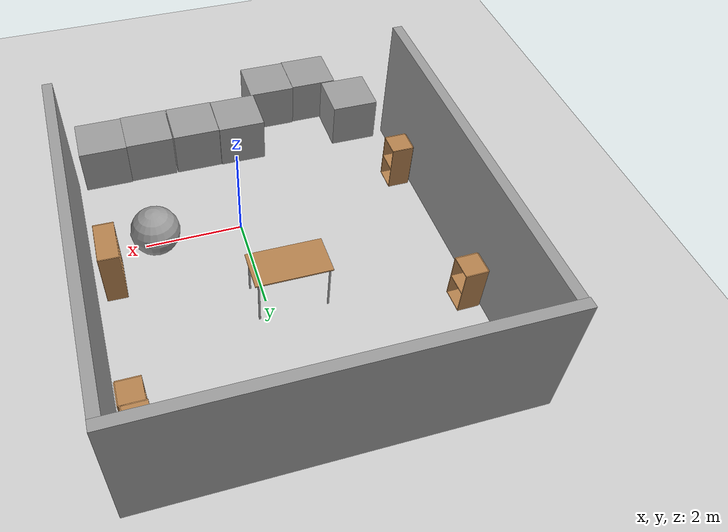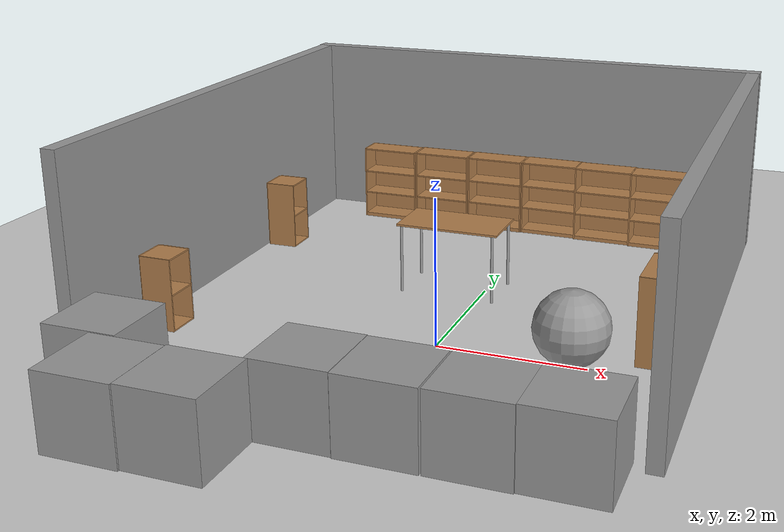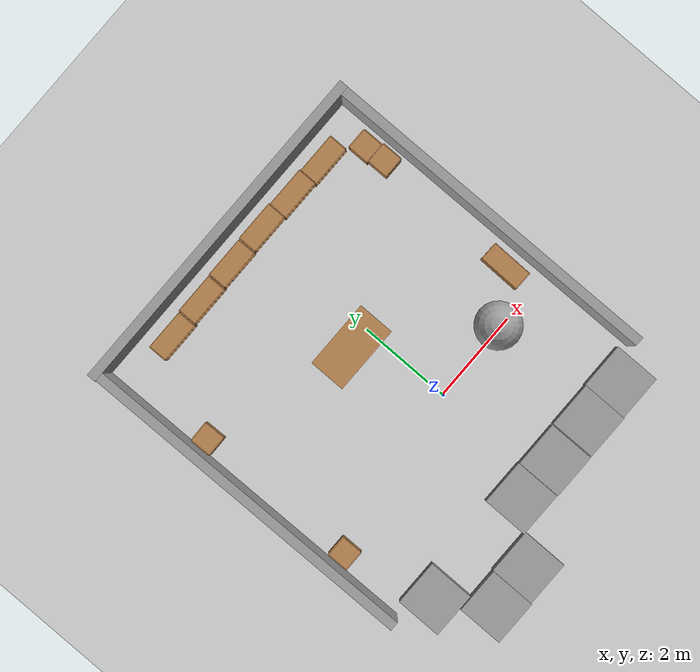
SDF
<sdf version="1.4">
 <world name="default">
  <light name="sun" type="directional">
   <pose>0 0 10 0 -0 0</pose>
   <diffuse>0.8 0.8 0.8 1</diffuse>
   <specular>0.2 0.2 0.2 1</specular>
   <attenuation>
    <range>1000</range>
    <constant>0.9</constant>
    <linear>0.01</linear>
    <quadratic>0.001</quadratic>
   </attenuation>
   <direction>-0.5 0.1 -0.9</direction>
  </light>
  <model name="ground_plane">
   <static>1</static>
   <link name="link">
    <collision name="collision">
     <geometry><plane><normal>0 0 1</normal><size>100 100</size></plane></geometry>
     <surface><friction><ode><mu>100</mu><mu2>50</mu2></ode></friction></surface>
    </collision>
    <visual name="visual">
     <cast_shadows>0</cast_shadows>
     <geometry><plane><normal>0 0 1</normal><size>100 100</size></plane></geometry>
     <material>
      <script><uri>file://media/materials/scripts/gazebo.material</uri><name>Gazebo/Grey</name></script>
     </material>
    </visual>
    <velocity_decay><linear>0</linear><angular>0</angular></velocity_decay>
   </link>
  </model>
  <physics type="ode">
   <max_step_size>0.001</max_step_size>
   <real_time_factor>1</real_time_factor>
   <real_time_update_rate>1000</real_time_update_rate>
   <gravity>0 0 -9.8</gravity>
  </physics>
  <scene><ambient>0.4 0.4 0.4 1</ambient><background>0.7 0.7 0.7 1</background><shadows>1</shadows></scene>
  <spherical_coordinates>
   <surface_model>EARTH_WGS84</surface_model>
   <latitude_deg>0</latitude_deg>
   <longitude_deg>0</longitude_deg>
   <elevation>0</elevation>
   <heading_deg>0</heading_deg>
  </spherical_coordinates>
  <model name="bookshelf_1">
   <static>1</static>
   <link name="link">
    <inertial><mass>1</mass></inertial>
    <collision name="back">
     <pose>0 0.005 0.6 0 -0 0</pose>
     <geometry><box><size>0.9 0.01 1.2</size></box></geometry>
    </collision>
    <visual name="visual1">
     <pose>0 0.005 0.6 0 -0 0</pose>
     <geometry><box><size>0.9 0.01 1.2</size></box></geometry>
     <material>
      <script><uri>file://media/materials/scripts/gazebo.material</uri><name>Gazebo/Wood</name></script>
     </material>
    </visual>
    <collision name="left_side">
     <pose>0.45 -0.195 0.6 0 -0 0</pose>
     <geometry><box><size>0.02 0.4 1.2</size></box></geometry>
    </collision>
    <visual name="visual2">
     <pose>0.45 -0.195 0.6 0 -0 0</pose>
     <geometry><box><size>0.02 0.4 1.2</size></box></geometry>
     <material>
      <script><uri>file://media/materials/scripts/gazebo.material</uri><name>Gazebo/Wood</name></script>
     </material>
    </visual>
    <collision name="right_side">
     <pose>-0.45 -0.195 0.6 0 -0 0</pose>
     <geometry><box><size>0.02 0.4 1.2</size></box></geometry>
    </collision>
    <visual name="visual3">
     <pose>-0.45 -0.195 0.6 0 -0 0</pose>
     <geometry><box><size>0.02 0.4 1.2</size></box></geometry>
     <material>
      <script><uri>file://media/materials/scripts/gazebo.material</uri><name>Gazebo/Wood</name></script>
     </material>
    </visual>
    <collision name="bottom">
     <pose>0 -0.195 0.03 0 -0 0</pose>
     <geometry><box><size>0.88 0.4 0.06</size></box></geometry>
    </collision>
    <visual name="visual4">
     <pose>0 -0.195 0.03 0 -0 0</pose>
     <geometry><box><size>0.88 0.4 0.06</size></box></geometry>
     <material>
      <script><uri>file://media/materials/scripts/gazebo.material</uri><name>Gazebo/Wood</name></script>
     </material>
    </visual>
    <collision name="top">
     <pose>0 -0.195 1.19 0 -0 0</pose>
     <geometry><box><size>0.88 0.4 0.02</size></box></geometry>
    </collision>
    <visual name="visual5">
     <pose>0 -0.195 1.19 0 -0 0</pose>
     <geometry><box><size>0.88 0.4 0.02</size></box></geometry>
     <material>
      <script><uri>file://media/materials/scripts/gazebo.material</uri><name>Gazebo/Wood</name></script>
     </material>
    </visual>
    <collision name="low_shelf">
     <pose>0 -0.195 0.43 0 -0 0</pose>
     <geometry><box><size>0.88 0.4 0.02</size></box></geometry>
    </collision>
    <visual name="visual6">
     <pose>0 -0.195 0.43 0 -0 0</pose>
     <geometry><box><size>0.88 0.4 0.02</size></box></geometry>
     <material>
      <script><uri>file://media/materials/scripts/gazebo.material</uri><name>Gazebo/Wood</name></script>
     </material>
    </visual>
    <collision name="high_shelf">
     <pose>0 -0.195 0.8 0 -0 0</pose>
     <geometry><box><size>0.88 0.4 0.02</size></box></geometry>
    </collision>
    <visual name="visual7">
     <pose>0 -0.195 0.8 0 -0 0</pose>
     <geometry><box><size>0.88 0.4 0.02</size></box></geometry>
     <material>
      <script><uri>file://media/materials/scripts/gazebo.material</uri><name>Gazebo/Wood</name></script>
     </material>
    </visual>
    <velocity_decay><linear>0</linear><angular>0</angular></velocity_decay>
   </link>
   <pose>-2.60211 5.02258 0 0 -0 0</pose>
  </model>
  <model name="bookshelf_2">
   <static>1</static>
   <link name="link">
    <inertial><mass>1</mass></inertial>
    <collision name="back">
     <pose>0 0.005 0.6 0 -0 0</pose>
     <geometry><box><size>0.9 0.01 1.2</size></box></geometry>
    </collision>
    <visual name="visual1">
     <pose>0 0.005 0.6 0 -0 0</pose>
     <geometry><box><size>0.9 0.01 1.2</size></box></geometry>
     <material>
      <script><uri>file://media/materials/scripts/gazebo.material</uri><name>Gazebo/Wood</name></script>
     </material>
    </visual>
    <collision name="left_side">
     <pose>0.45 -0.195 0.6 0 -0 0</pose>
     <geometry><box><size>0.02 0.4 1.2</size></box></geometry>
    </collision>
    <visual name="visual2">
     <pose>0.45 -0.195 0.6 0 -0 0</pose>
     <geometry><box><size>0.02 0.4 1.2</size></box></geometry>
     <material>
      <script><uri>file://media/materials/scripts/gazebo.material</uri><name>Gazebo/Wood</name></script>
     </material>
    </visual>
    <collision name="right_side">
     <pose>-0.45 -0.195 0.6 0 -0 0</pose>
     <geometry><box><size>0.02 0.4 1.2</size></box></geometry>
    </collision>
    <visual name="visual3">
     <pose>-0.45 -0.195 0.6 0 -0 0</pose>
     <geometry><box><size>0.02 0.4 1.2</size></box></geometry>
     <material>
      <script><uri>file://media/materials/scripts/gazebo.material</uri><name>Gazebo/Wood</name></script>
     </material>
    </visual>
    <collision name="bottom">
     <pose>0 -0.195 0.03 0 -0 0</pose>
     <geometry><box><size>0.88 0.4 0.06</size></box></geometry>
    </collision>
    <visual name="visual4">
     <pose>0 -0.195 0.03 0 -0 0</pose>
     <geometry><box><size>0.88 0.4 0.06</size></box></geometry>
     <material>
      <script><uri>file://media/materials/scripts/gazebo.material</uri><name>Gazebo/Wood</name></script>
     </material>
    </visual>
    <collision name="top">
     <pose>0 -0.195 1.19 0 -0 0</pose>
     <geometry><box><size>0.88 0.4 0.02</size></box></geometry>
    </collision>
    <visual name="visual5">
     <pose>0 -0.195 1.19 0 -0 0</pose>
     <geometry><box><size>0.88 0.4 0.02</size></box></geometry>
     <material>
      <script><uri>file://media/materials/scripts/gazebo.material</uri><name>Gazebo/Wood</name></script>
     </material>
    </visual>
    <collision name="low_shelf">
     <pose>0 -0.195 0.43 0 -0 0</pose>
     <geometry><box><size>0.88 0.4 0.02</size></box></geometry>
    </collision>
    <visual name="visual6">
     <pose>0 -0.195 0.43 0 -0 0</pose>
     <geometry><box><size>0.88 0.4 0.02</size></box></geometry>
     <material>
      <script><uri>file://media/materials/scripts/gazebo.material</uri><name>Gazebo/Wood</name></script>
     </material>
    </visual>
    <collision name="high_shelf">
     <pose>0 -0.195 0.8 0 -0 0</pose>
     <geometry><box><size>0.88 0.4 0.02</size></box></geometry>
    </collision>
    <visual name="visual7">
     <pose>0 -0.195 0.8 0 -0 0</pose>
     <geometry><box><size>0.88 0.4 0.02</size></box></geometry>
     <material>
      <script><uri>file://media/materials/scripts/gazebo.material</uri><name>Gazebo/Wood</name></script>
     </material>
    </visual>
    <velocity_decay><linear>0</linear><angular>0</angular></velocity_decay>
   </link>
   <pose>-1.67887 5.04795 0 0 -0 0</pose>
  </model>
  <model name="bookshelf_3">
   <static>1</static>
   <link name="link">
    <inertial><mass>1</mass></inertial>
    <collision name="back">
     <pose>0 0.005 0.6 0 -0 0</pose>
     <geometry><box><size>0.9 0.01 1.2</size></box></geometry>
    </collision>
    <visual name="visual1">
     <pose>0 0.005 0.6 0 -0 0</pose>
     <geometry><box><size>0.9 0.01 1.2</size></box></geometry>
     <material>
      <script><uri>file://media/materials/scripts/gazebo.material</uri><name>Gazebo/Wood</name></script>
     </material>
    </visual>
    <collision name="left_side">
     <pose>0.45 -0.195 0.6 0 -0 0</pose>
     <geometry><box><size>0.02 0.4 1.2</size></box></geometry>
    </collision>
    <visual name="visual2">
     <pose>0.45 -0.195 0.6 0 -0 0</pose>
     <geometry><box><size>0.02 0.4 1.2</size></box></geometry>
     <material>
      <script><uri>file://media/materials/scripts/gazebo.material</uri><name>Gazebo/Wood</name></script>
     </material>
    </visual>
    <collision name="right_side">
     <pose>-0.45 -0.195 0.6 0 -0 0</pose>
     <geometry><box><size>0.02 0.4 1.2</size></box></geometry>
    </collision>
    <visual name="visual3">
     <pose>-0.45 -0.195 0.6 0 -0 0</pose>
     <geometry><box><size>0.02 0.4 1.2</size></box></geometry>
     <material>
      <script><uri>file://media/materials/scripts/gazebo.material</uri><name>Gazebo/Wood</name></script>
     </material>
    </visual>
    <collision name="bottom">
     <pose>0 -0.195 0.03 0 -0 0</pose>
     <geometry><box><size>0.88 0.4 0.06</size></box></geometry>
    </collision>
    <visual name="visual4">
     <pose>0 -0.195 0.03 0 -0 0</pose>
     <geometry><box><size>0.88 0.4 0.06</size></box></geometry>
     <material>
      <script><uri>file://media/materials/scripts/gazebo.material</uri><name>Gazebo/Wood</name></script>
     </material>
    </visual>
    <collision name="top">
     <pose>0 -0.195 1.19 0 -0 0</pose>
     <geometry><box><size>0.88 0.4 0.02</size></box></geometry>
    </collision>
    <visual name="visual5">
     <pose>0 -0.195 1.19 0 -0 0</pose>
     <geometry><box><size>0.88 0.4 0.02</size></box></geometry>
     <material>
      <script><uri>file://media/materials/scripts/gazebo.material</uri><name>Gazebo/Wood</name></script>
     </material>
    </visual>
    <collision name="low_shelf">
     <pose>0 -0.195 0.43 0 -0 0</pose>
     <geometry><box><size>0.88 0.4 0.02</size></box></geometry>
    </collision>
    <visual name="visual6">
     <pose>0 -0.195 0.43 0 -0 0</pose>
     <geometry><box><size>0.88 0.4 0.02</size></box></geometry>
     <material>
      <script><uri>file://media/materials/scripts/gazebo.material</uri><name>Gazebo/Wood</name></script>
     </material>
    </visual>
    <collision name="high_shelf">
     <pose>0 -0.195 0.8 0 -0 0</pose>
     <geometry><box><size>0.88 0.4 0.02</size></box></geometry>
    </collision>
    <visual name="visual7">
     <pose>0 -0.195 0.8 0 -0 0</pose>
     <geometry><box><size>0.88 0.4 0.02</size></box></geometry>
     <material>
      <script><uri>file://media/materials/scripts/gazebo.material</uri><name>Gazebo/Wood</name></script>
     </material>
    </visual>
    <velocity_decay><linear>0</linear><angular>0</angular></velocity_decay>
   </link>
   <pose>-0.750845 5.06248 0 0 -0 0</pose>
  </model>
  <model name="bookshelf_4">
   <static>1</static>
   <link name="link">
    <inertial><mass>1</mass></inertial>
    <collision name="back">
     <pose>0 0.005 0.6 0 -0 0</pose>
     <geometry><box><size>0.9 0.01 1.2</size></box></geometry>
    </collision>
    <visual name="visual1">
     <pose>0 0.005 0.6 0 -0 0</pose>
     <geometry><box><size>0.9 0.01 1.2</size></box></geometry>
     <material>
      <script><uri>file://media/materials/scripts/gazebo.material</uri><name>Gazebo/Wood</name></script>
     </material>
    </visual>
    <collision name="left_side">
     <pose>0.45 -0.195 0.6 0 -0 0</pose>
     <geometry><box><size>0.02 0.4 1.2</size></box></geometry>
    </collision>
    <visual name="visual2">
     <pose>0.45 -0.195 0.6 0 -0 0</pose>
     <geometry><box><size>0.02 0.4 1.2</size></box></geometry>
     <material>
      <script><uri>file://media/materials/scripts/gazebo.material</uri><name>Gazebo/Wood</name></script>
     </material>
    </visual>
    <collision name="right_side">
     <pose>-0.45 -0.195 0.6 0 -0 0</pose>
     <geometry><box><size>0.02 0.4 1.2</size></box></geometry>
    </collision>
    <visual name="visual3">
     <pose>-0.45 -0.195 0.6 0 -0 0</pose>
     <geometry><box><size>0.02 0.4 1.2</size></box></geometry>
     <material>
      <script><uri>file://media/materials/scripts/gazebo.material</uri><name>Gazebo/Wood</name></script>
     </material>
    </visual>
    <collision name="bottom">
     <pose>0 -0.195 0.03 0 -0 0</pose>
     <geometry><box><size>0.88 0.4 0.06</size></box></geometry>
    </collision>
    <visual name="visual4">
     <pose>0 -0.195 0.03 0 -0 0</pose>
     <geometry><box><size>0.88 0.4 0.06</size></box></geometry>
     <material>
      <script><uri>file://media/materials/scripts/gazebo.material</uri><name>Gazebo/Wood</name></script>
     </material>
    </visual>
    <collision name="top">
     <pose>0 -0.195 1.19 0 -0 0</pose>
     <geometry><box><size>0.88 0.4 0.02</size></box></geometry>
    </collision>
    <visual name="visual5">
     <pose>0 -0.195 1.19 0 -0 0</pose>
     <geometry><box><size>0.88 0.4 0.02</size></box></geometry>
     <material>
      <script><uri>file://media/materials/scripts/gazebo.material</uri><name>Gazebo/Wood</name></script>
     </material>
    </visual>
    <collision name="low_shelf">
     <pose>0 -0.195 0.43 0 -0 0</pose>
     <geometry><box><size>0.88 0.4 0.02</size></box></geometry>
    </collision>
    <visual name="visual6">
     <pose>0 -0.195 0.43 0 -0 0</pose>
     <geometry><box><size>0.88 0.4 0.02</size></box></geometry>
     <material>
      <script><uri>file://media/materials/scripts/gazebo.material</uri><name>Gazebo/Wood</name></script>
     </material>
    </visual>
    <collision name="high_shelf">
     <pose>0 -0.195 0.8 0 -0 0</pose>
     <geometry><box><size>0.88 0.4 0.02</size></box></geometry>
    </collision>
    <visual name="visual7">
     <pose>0 -0.195 0.8 0 -0 0</pose>
     <geometry><box><size>0.88 0.4 0.02</size></box></geometry>
     <material>
      <script><uri>file://media/materials/scripts/gazebo.material</uri><name>Gazebo/Wood</name></script>
     </material>
    </visual>
    <velocity_decay><linear>0</linear><angular>0</angular></velocity_decay>
   </link>
   <pose>0.174137 5.07778 0 0 -0 0</pose>
  </model>
  <model name="bookshelf_5">
   <static>1</static>
   <link name="link">
    <inertial><mass>1</mass></inertial>
    <collision name="back">
     <pose>0 0.005 0.6 0 -0 0</pose>
     <geometry><box><size>0.9 0.01 1.2</size></box></geometry>
    </collision>
    <visual name="visual1">
     <pose>0 0.005 0.6 0 -0 0</pose>
     <geometry><box><size>0.9 0.01 1.2</size></box></geometry>
     <material>
      <script><uri>file://media/materials/scripts/gazebo.material</uri><name>Gazebo/Wood</name></script>
     </material>
    </visual>
    <collision name="left_side">
     <pose>0.45 -0.195 0.6 0 -0 0</pose>
     <geometry><box><size>0.02 0.4 1.2</size></box></geometry>
    </collision>
    <visual name="visual2">
     <pose>0.45 -0.195 0.6 0 -0 0</pose>
     <geometry><box><size>0.02 0.4 1.2</size></box></geometry>
     <material>
      <script><uri>file://media/materials/scripts/gazebo.material</uri><name>Gazebo/Wood</name></script>
     </material>
    </visual>
    <collision name="right_side">
     <pose>-0.45 -0.195 0.6 0 -0 0</pose>
     <geometry><box><size>0.02 0.4 1.2</size></box></geometry>
    </collision>
    <visual name="visual3">
     <pose>-0.45 -0.195 0.6 0 -0 0</pose>
     <geometry><box><size>0.02 0.4 1.2</size></box></geometry>
     <material>
      <script><uri>file://media/materials/scripts/gazebo.material</uri><name>Gazebo/Wood</name></script>
     </material>
    </visual>
    <collision name="bottom">
     <pose>0 -0.195 0.03 0 -0 0</pose>
     <geometry><box><size>0.88 0.4 0.06</size></box></geometry>
    </collision>
    <visual name="visual4">
     <pose>0 -0.195 0.03 0 -0 0</pose>
     <geometry><box><size>0.88 0.4 0.06</size></box></geometry>
     <material>
      <script><uri>file://media/materials/scripts/gazebo.material</uri><name>Gazebo/Wood</name></script>
     </material>
    </visual>
    <collision name="top">
     <pose>0 -0.195 1.19 0 -0 0</pose>
     <geometry><box><size>0.88 0.4 0.02</size></box></geometry>
    </collision>
    <visual name="visual5">
     <pose>0 -0.195 1.19 0 -0 0</pose>
     <geometry><box><size>0.88 0.4 0.02</size></box></geometry>
     <material>
      <script><uri>file://media/materials/scripts/gazebo.material</uri><name>Gazebo/Wood</name></script>
     </material>
    </visual>
    <collision name="low_shelf">
     <pose>0 -0.195 0.43 0 -0 0</pose>
     <geometry><box><size>0.88 0.4 0.02</size></box></geometry>
    </collision>
    <visual name="visual6">
     <pose>0 -0.195 0.43 0 -0 0</pose>
     <geometry><box><size>0.88 0.4 0.02</size></box></geometry>
     <material>
      <script><uri>file://media/materials/scripts/gazebo.material</uri><name>Gazebo/Wood</name></script>
     </material>
    </visual>
    <collision name="high_shelf">
     <pose>0 -0.195 0.8 0 -0 0</pose>
     <geometry><box><size>0.88 0.4 0.02</size></box></geometry>
    </collision>
    <visual name="visual7">
     <pose>0 -0.195 0.8 0 -0 0</pose>
     <geometry><box><size>0.88 0.4 0.02</size></box></geometry>
     <material>
      <script><uri>file://media/materials/scripts/gazebo.material</uri><name>Gazebo/Wood</name></script>
     </material>
    </visual>
    <velocity_decay><linear>0</linear><angular>0</angular></velocity_decay>
   </link>
   <pose>1.07614 5.05183 0 0 -0 0</pose>
  </model>
  <model name="bookshelf_6">
   <static>1</static>
   <link name="link">
    <inertial><mass>1</mass></inertial>
    <collision name="back">
     <pose>0 0.005 0.6 0 -0 0</pose>
     <geometry><box><size>0.9 0.01 1.2</size></box></geometry>
    </collision>
    <visual name="visual1">
     <pose>0 0.005 0.6 0 -0 0</pose>
     <geometry><box><size>0.9 0.01 1.2</size></box></geometry>
     <material>
      <script><uri>file://media/materials/scripts/gazebo.material</uri><name>Gazebo/Wood</name></script>
     </material>
    </visual>
    <collision name="left_side">
     <pose>0.45 -0.195 0.6 0 -0 0</pose>
     <geometry><box><size>0.02 0.4 1.2</size></box></geometry>
    </collision>
    <visual name="visual2">
     <pose>0.45 -0.195 0.6 0 -0 0</pose>
     <geometry><box><size>0.02 0.4 1.2</size></box></geometry>
     <material>
      <script><uri>file://media/materials/scripts/gazebo.material</uri><name>Gazebo/Wood</name></script>
     </material>
    </visual>
    <collision name="right_side">
     <pose>-0.45 -0.195 0.6 0 -0 0</pose>
     <geometry><box><size>0.02 0.4 1.2</size></box></geometry>
    </collision>
    <visual name="visual3">
     <pose>-0.45 -0.195 0.6 0 -0 0</pose>
     <geometry><box><size>0.02 0.4 1.2</size></box></geometry>
     <material>
      <script><uri>file://media/materials/scripts/gazebo.material</uri><name>Gazebo/Wood</name></script>
     </material>
    </visual>
    <collision name="bottom">
     <pose>0 -0.195 0.03 0 -0 0</pose>
     <geometry><box><size>0.88 0.4 0.06</size></box></geometry>
    </collision>
    <visual name="visual4">
     <pose>0 -0.195 0.03 0 -0 0</pose>
     <geometry><box><size>0.88 0.4 0.06</size></box></geometry>
     <material>
      <script><uri>file://media/materials/scripts/gazebo.material</uri><name>Gazebo/Wood</name></script>
     </material>
    </visual>
    <collision name="top">
     <pose>0 -0.195 1.19 0 -0 0</pose>
     <geometry><box><size>0.88 0.4 0.02</size></box></geometry>
    </collision>
    <visual name="visual5">
     <pose>0 -0.195 1.19 0 -0 0</pose>
     <geometry><box><size>0.88 0.4 0.02</size></box></geometry>
     <material>
      <script><uri>file://media/materials/scripts/gazebo.material</uri><name>Gazebo/Wood</name></script>
     </material>
    </visual>
    <collision name="low_shelf">
     <pose>0 -0.195 0.43 0 -0 0</pose>
     <geometry><box><size>0.88 0.4 0.02</size></box></geometry>
    </collision>
    <visual name="visual6">
     <pose>0 -0.195 0.43 0 -0 0</pose>
     <geometry><box><size>0.88 0.4 0.02</size></box></geometry>
     <material>
      <script><uri>file://media/materials/scripts/gazebo.material</uri><name>Gazebo/Wood</name></script>
     </material>
    </visual>
    <collision name="high_shelf">
     <pose>0 -0.195 0.8 0 -0 0</pose>
     <geometry><box><size>0.88 0.4 0.02</size></box></geometry>
    </collision>
    <visual name="visual7">
     <pose>0 -0.195 0.8 0 -0 0</pose>
     <geometry><box><size>0.88 0.4 0.02</size></box></geometry>
     <material>
      <script><uri>file://media/materials/scripts/gazebo.material</uri><name>Gazebo/Wood</name></script>
     </material>
    </visual>
    <velocity_decay><linear>0</linear><angular>0</angular></velocity_decay>
   </link>
   <pose>1.97925 5.02595 0 0 -0 0</pose>
  </model>
  <model name="cabinet">
   <static>1</static>
   <link name="cabinet_bottom_plate">
    <inertial>
     <pose>0 0 -1 0 -0 0</pose>
     <inertia><ixx>2.05</ixx><ixy>0</ixy><ixz>0</ixz><iyy>2.05</iyy><iyz>0</iyz><izz>2.05</izz></inertia>
     <mass>25</mass>
    </inertial>
    <collision name="cabinet_bottom_plate_geom">
     <pose>0 0 0.01 0 -0 0</pose>
     <geometry><box><size>0.45 0.45 0.02</size></box></geometry>
    </collision>
    <visual name="cabinet_bottom_plate_geom_visual">
     <pose>0 0 0.01 0 -0 0</pose>
     <geometry><box><size>0.45 0.45 0.02</size></box></geometry>
     <material>
      <script><uri>file://media/materials/scripts/gazebo.material</uri><name>Gazebo/Wood</name></script>
     </material>
    </visual>
    <collision name="cabinet_bottom_plate_geom_cabinet_back_plate">
     <pose>0.235 0 0.51 0 -0 0</pose>
     <geometry><box><size>0.02 0.45 1.02</size></box></geometry>
    </collision>
    <visual name="cabinet_bottom_plate_geom_cabinet_back_plate_visual">
     <pose>0.235 0 0.51 0 -0 0</pose>
     <geometry><box><size>0.02 0.45 1.02</size></box></geometry>
     <material>
      <script><uri>file://media/materials/scripts/gazebo.material</uri><name>Gazebo/Wood</name></script>
     </material>
    </visual>
    <collision name="cabinet_bottom_plate_geom_cabinet_left_plate">
     <pose>0 0.235 0.51 0 -0 0</pose>
     <geometry><box><size>0.45 0.02 1.02</size></box></geometry>
    </collision>
    <visual name="cabinet_bottom_plate_geom_cabinet_left_plate_visual">
     <pose>0 0.235 0.51 0 -0 0</pose>
     <geometry><box><size>0.45 0.02 1.02</size></box></geometry>
     <material>
      <script><uri>file://media/materials/scripts/gazebo.material</uri><name>Gazebo/Wood</name></script>
     </material>
    </visual>
    <collision name="cabinet_bottom_plate_geom_cabinet_middle_plate">
     <pose>0 0 0.51 0 -0 0</pose>
     <geometry><box><size>0.45 0.45 0.02</size></box></geometry>
    </collision>
    <visual name="cabinet_bottom_plate_geom_cabinet_middle_plate_visual">
     <pose>0 0 0.51 0 -0 0</pose>
     <geometry><box><size>0.45 0.45 0.02</size></box></geometry>
     <material>
      <script><uri>file://media/materials/scripts/gazebo.material</uri><name>Gazebo/Wood</name></script>
     </material>
    </visual>
    <collision name="cabinet_bottom_plate_geom_cabinet_right_plate">
     <pose>0 -0.235 0.51 0 -0 0</pose>
     <geometry><box><size>0.45 0.02 1.02</size></box></geometry>
    </collision>
    <visual name="cabinet_bottom_plate_geom_cabinet_right_plate_visual">
     <pose>0 -0.235 0.51 0 -0 0</pose>
     <geometry><box><size>0.45 0.02 1.02</size></box></geometry>
     <material>
      <script><uri>file://media/materials/scripts/gazebo.material</uri><name>Gazebo/Wood</name></script>
     </material>
    </visual>
    <collision name="cabinet_bottom_plate_geom_cabinet_top_plate">
     <pose>0 0 1.01 0 -0 0</pose>
     <geometry><box><size>0.45 0.45 0.02</size></box></geometry>
    </collision>
    <visual name="cabinet_bottom_plate_geom_cabinet_top_plate_visual">
     <pose>0 0 1.01 0 -0 0</pose>
     <geometry><box><size>0.45 0.45 0.02</size></box></geometry>
     <material>
      <script><uri>file://media/materials/scripts/gazebo.material</uri><name>Gazebo/Wood</name></script>
     </material>
    </visual>
    <velocity_decay><linear>0</linear><angular>0</angular></velocity_decay>
   </link>
   <pose>-3.69276 2.98309 0 0 0 -3.12119</pose>
  </model>
  <model name="cabinet_0">
   <static>1</static>
   <link name="cabinet_bottom_plate">
    <inertial>
     <pose>0 0 -1 0 -0 0</pose>
     <inertia><ixx>2.05</ixx><ixy>0</ixy><ixz>0</ixz><iyy>2.05</iyy><iyz>0</iyz><izz>2.05</izz></inertia>
     <mass>25</mass>
    </inertial>
    <collision name="cabinet_bottom_plate_geom">
     <pose>0 0 0.01 0 -0 0</pose>
     <geometry><box><size>0.45 0.45 0.02</size></box></geometry>
    </collision>
    <visual name="cabinet_bottom_plate_geom_visual">
     <pose>0 0 0.01 0 -0 0</pose>
     <geometry><box><size>0.45 0.45 0.02</size></box></geometry>
     <material>
      <script><uri>file://media/materials/scripts/gazebo.material</uri><name>Gazebo/Wood</name></script>
     </material>
    </visual>
    <collision name="cabinet_bottom_plate_geom_cabinet_back_plate">
     <pose>0.235 0 0.51 0 -0 0</pose>
     <geometry><box><size>0.02 0.45 1.02</size></box></geometry>
    </collision>
    <visual name="cabinet_bottom_plate_geom_cabinet_back_plate_visual">
     <pose>0.235 0 0.51 0 -0 0</pose>
     <geometry><box><size>0.02 0.45 1.02</size></box></geometry>
     <material>
      <script><uri>file://media/materials/scripts/gazebo.material</uri><name>Gazebo/Wood</name></script>
     </material>
    </visual>
    <collision name="cabinet_bottom_plate_geom_cabinet_left_plate">
     <pose>0 0.235 0.51 0 -0 0</pose>
     <geometry><box><size>0.45 0.02 1.02</size></box></geometry>
    </collision>
    <visual name="cabinet_bottom_plate_geom_cabinet_left_plate_visual">
     <pose>0 0.235 0.51 0 -0 0</pose>
     <geometry><box><size>0.45 0.02 1.02</size></box></geometry>
     <material>
      <script><uri>file://media/materials/scripts/gazebo.material</uri><name>Gazebo/Wood</name></script>
     </material>
    </visual>
    <collision name="cabinet_bottom_plate_geom_cabinet_middle_plate">
     <pose>0 0 0.51 0 -0 0</pose>
     <geometry><box><size>0.45 0.45 0.02</size></box></geometry>
    </collision>
    <visual name="cabinet_bottom_plate_geom_cabinet_middle_plate_visual">
     <pose>0 0 0.51 0 -0 0</pose>
     <geometry><box><size>0.45 0.45 0.02</size></box></geometry>
     <material>
      <script><uri>file://media/materials/scripts/gazebo.material</uri><name>Gazebo/Wood</name></script>
     </material>
    </visual>
    <collision name="cabinet_bottom_plate_geom_cabinet_right_plate">
     <pose>0 -0.235 0.51 0 -0 0</pose>
     <geometry><box><size>0.45 0.02 1.02</size></box></geometry>
    </collision>
    <visual name="cabinet_bottom_plate_geom_cabinet_right_plate_visual">
     <pose>0 -0.235 0.51 0 -0 0</pose>
     <geometry><box><size>0.45 0.02 1.02</size></box></geometry>
     <material>
      <script><uri>file://media/materials/scripts/gazebo.material</uri><name>Gazebo/Wood</name></script>
     </material>
    </visual>
    <collision name="cabinet_bottom_plate_geom_cabinet_top_plate">
     <pose>0 0 1.01 0 -0 0</pose>
     <geometry><box><size>0.45 0.45 0.02</size></box></geometry>
    </collision>
    <visual name="cabinet_bottom_plate_geom_cabinet_top_plate_visual">
     <pose>0 0 1.01 0 -0 0</pose>
     <geometry><box><size>0.45 0.45 0.02</size></box></geometry>
     <material>
      <script><uri>file://media/materials/scripts/gazebo.material</uri><name>Gazebo/Wood</name></script>
     </material>
    </visual>
    <velocity_decay><linear>0</linear><angular>0</angular></velocity_decay>
   </link>
   <pose>-3.64296 -0.553538 0 0 0 -3.13794</pose>
  </model>
  <model name="cabinet_1">
   <static>1</static>
   <link name="cabinet_bottom_plate">
    <inertial>
     <pose>0 0 -1 0 -0 0</pose>
     <inertia><ixx>2.05</ixx><ixy>0</ixy><ixz>0</ixz><iyy>2.05</iyy><iyz>0</iyz><izz>2.05</izz></inertia>
     <mass>25</mass>
    </inertial>
    <collision name="cabinet_bottom_plate_geom">
     <pose>0 0 0.01 0 -0 0</pose>
     <geometry><box><size>0.45 0.45 0.02</size></box></geometry>
    </collision>
    <visual name="cabinet_bottom_plate_geom_visual">
     <pose>0 0 0.01 0 -0 0</pose>
     <geometry><box><size>0.45 0.45 0.02</size></box></geometry>
     <material>
      <script><uri>file://media/materials/scripts/gazebo.material</uri><name>Gazebo/Wood</name></script>
     </material>
    </visual>
    <collision name="cabinet_bottom_plate_geom_cabinet_back_plate">
     <pose>0.235 0 0.51 0 -0 0</pose>
     <geometry><box><size>0.02 0.45 1.02</size></box></geometry>
    </collision>
    <visual name="cabinet_bottom_plate_geom_cabinet_back_plate_visual">
     <pose>0.235 0 0.51 0 -0 0</pose>
     <geometry><box><size>0.02 0.45 1.02</size></box></geometry>
     <material>
      <script><uri>file://media/materials/scripts/gazebo.material</uri><name>Gazebo/Wood</name></script>
     </material>
    </visual>
    <collision name="cabinet_bottom_plate_geom_cabinet_left_plate">
     <pose>0 0.235 0.51 0 -0 0</pose>
     <geometry><box><size>0.45 0.02 1.02</size></box></geometry>
    </collision>
    <visual name="cabinet_bottom_plate_geom_cabinet_left_plate_visual">
     <pose>0 0.235 0.51 0 -0 0</pose>
     <geometry><box><size>0.45 0.02 1.02</size></box></geometry>
     <material>
      <script><uri>file://media/materials/scripts/gazebo.material</uri><name>Gazebo/Wood</name></script>
     </material>
    </visual>
    <collision name="cabinet_bottom_plate_geom_cabinet_middle_plate">
     <pose>0 0 0.51 0 -0 0</pose>
     <geometry><box><size>0.45 0.45 0.02</size></box></geometry>
    </collision>
    <visual name="cabinet_bottom_plate_geom_cabinet_middle_plate_visual">
     <pose>0 0 0.51 0 -0 0</pose>
     <geometry><box><size>0.45 0.45 0.02</size></box></geometry>
     <material>
      <script><uri>file://media/materials/scripts/gazebo.material</uri><name>Gazebo/Wood</name></script>
     </material>
    </visual>
    <collision name="cabinet_bottom_plate_geom_cabinet_right_plate">
     <pose>0 -0.235 0.51 0 -0 0</pose>
     <geometry><box><size>0.45 0.02 1.02</size></box></geometry>
    </collision>
    <visual name="cabinet_bottom_plate_geom_cabinet_right_plate_visual">
     <pose>0 -0.235 0.51 0 -0 0</pose>
     <geometry><box><size>0.45 0.02 1.02</size></box></geometry>
     <material>
      <script><uri>file://media/materials/scripts/gazebo.material</uri><name>Gazebo/Wood</name></script>
     </material>
    </visual>
    <collision name="cabinet_bottom_plate_geom_cabinet_top_plate">
     <pose>0 0 1.01 0 -0 0</pose>
     <geometry><box><size>0.45 0.45 0.02</size></box></geometry>
    </collision>
    <visual name="cabinet_bottom_plate_geom_cabinet_top_plate_visual">
     <pose>0 0 1.01 0 -0 0</pose>
     <geometry><box><size>0.45 0.45 0.02</size></box></geometry>
     <material>
      <script><uri>file://media/materials/scripts/gazebo.material</uri><name>Gazebo/Wood</name></script>
     </material>
    </visual>
    <velocity_decay><linear>0</linear><angular>0</angular></velocity_decay>
   </link>
   <pose>2.73692 4.38456 0 0 -0 0</pose>
  </model>
  <model name="cabinet_2">
   <static>1</static>
   <link name="cabinet_bottom_plate">
    <inertial>
     <pose>0 0 -1 0 -0 0</pose>
     <inertia><ixx>2.05</ixx><ixy>0</ixy><ixz>0</ixz><iyy>2.05</iyy><iyz>0</iyz><izz>2.05</izz></inertia>
     <mass>25</mass>
    </inertial>
    <collision name="cabinet_bottom_plate_geom">
     <pose>0 0 0.01 0 -0 0</pose>
     <geometry><box><size>0.45 0.45 0.02</size></box></geometry>
    </collision>
    <visual name="cabinet_bottom_plate_geom_visual">
     <pose>0 0 0.01 0 -0 0</pose>
     <geometry><box><size>0.45 0.45 0.02</size></box></geometry>
     <material>
      <script><uri>file://media/materials/scripts/gazebo.material</uri><name>Gazebo/Wood</name></script>
     </material>
    </visual>
    <collision name="cabinet_bottom_plate_geom_cabinet_back_plate">
     <pose>0.235 0 0.51 0 -0 0</pose>
     <geometry><box><size>0.02 0.45 1.02</size></box></geometry>
    </collision>
    <visual name="cabinet_bottom_plate_geom_cabinet_back_plate_visual">
     <pose>0.235 0 0.51 0 -0 0</pose>
     <geometry><box><size>0.02 0.45 1.02</size></box></geometry>
     <material>
      <script><uri>file://media/materials/scripts/gazebo.material</uri><name>Gazebo/Wood</name></script>
     </material>
    </visual>
    <collision name="cabinet_bottom_plate_geom_cabinet_left_plate">
     <pose>0 0.235 0.51 0 -0 0</pose>
     <geometry><box><size>0.45 0.02 1.02</size></box></geometry>
    </collision>
    <visual name="cabinet_bottom_plate_geom_cabinet_left_plate_visual">
     <pose>0 0.235 0.51 0 -0 0</pose>
     <geometry><box><size>0.45 0.02 1.02</size></box></geometry>
     <material>
      <script><uri>file://media/materials/scripts/gazebo.material</uri><name>Gazebo/Wood</name></script>
     </material>
    </visual>
    <collision name="cabinet_bottom_plate_geom_cabinet_middle_plate">
     <pose>0 0 0.51 0 -0 0</pose>
     <geometry><box><size>0.45 0.45 0.02</size></box></geometry>
    </collision>
    <visual name="cabinet_bottom_plate_geom_cabinet_middle_plate_visual">
     <pose>0 0 0.51 0 -0 0</pose>
     <geometry><box><size>0.45 0.45 0.02</size></box></geometry>
     <material>
      <script><uri>file://media/materials/scripts/gazebo.material</uri><name>Gazebo/Wood</name></script>
     </material>
    </visual>
    <collision name="cabinet_bottom_plate_geom_cabinet_right_plate">
     <pose>0 -0.235 0.51 0 -0 0</pose>
     <geometry><box><size>0.45 0.02 1.02</size></box></geometry>
    </collision>
    <visual name="cabinet_bottom_plate_geom_cabinet_right_plate_visual">
     <pose>0 -0.235 0.51 0 -0 0</pose>
     <geometry><box><size>0.45 0.02 1.02</size></box></geometry>
     <material>
      <script><uri>file://media/materials/scripts/gazebo.material</uri><name>Gazebo/Wood</name></script>
     </material>
    </visual>
    <collision name="cabinet_bottom_plate_geom_cabinet_top_plate">
     <pose>0 0 1.01 0 -0 0</pose>
     <geometry><box><size>0.45 0.45 0.02</size></box></geometry>
    </collision>
    <visual name="cabinet_bottom_plate_geom_cabinet_top_plate_visual">
     <pose>0 0 1.01 0 -0 0</pose>
     <geometry><box><size>0.45 0.45 0.02</size></box></geometry>
     <material>
      <script><uri>file://media/materials/scripts/gazebo.material</uri><name>Gazebo/Wood</name></script>
     </material>
    </visual>
    <velocity_decay><linear>0</linear><angular>0</angular></velocity_decay>
   </link>
   <pose>2.77184 3.91477 0 0 -0 0</pose>
  </model>
  <model name="grey_wall">
   <static>1</static>
   <link name="link">
    <pose>0 0 1.4 0 -0 0</pose>
    <collision name="collision"><geometry><box><size>7.5 0.2 2.8</size></box></geometry></collision>
    <visual name="visual">
     <cast_shadows>0</cast_shadows>
     <geometry><box><size>7.5 0.2 2.8</size></box></geometry>
     <material>
      <script>
       <uri>model://grey_wall/materials/scripts</uri>
       <uri>model://grey_wall/materials/textures</uri>
       <name>vrc/grey_wall</name>
      </script>
     </material>
    </visual>
    <velocity_decay><linear>0</linear><angular>0</angular></velocity_decay>
   </link>
   <pose>-0.442389 5.41352 0 0 -0 0</pose>
  </model>
  <model name="grey_wall_0">
   <static>1</static>
   <link name="link">
    <pose>0 0 1.4 0 -0 0</pose>
    <collision name="collision"><geometry><box><size>7.5 0.2 2.8</size></box></geometry></collision>
    <visual name="visual">
     <cast_shadows>0</cast_shadows>
     <geometry><box><size>7.5 0.2 2.8</size></box></geometry>
     <material>
      <script>
       <uri>model://grey_wall/materials/scripts</uri>
       <uri>model://grey_wall/materials/textures</uri>
       <name>vrc/grey_wall</name>
      </script>
     </material>
    </visual>
    <velocity_decay><linear>0</linear><angular>0</angular></velocity_decay>
   </link>
   <pose>-4.04453 1.59528 0 0 0 -1.56355</pose>
  </model>
  <model name="bookshelf_7">
   <static>1</static>
   <link name="link">
    <inertial><mass>1</mass></inertial>
    <collision name="back">
     <pose>0 0.005 0.6 0 -0 0</pose>
     <geometry><box><size>0.9 0.01 1.2</size></box></geometry>
    </collision>
    <visual name="visual1">
     <pose>0 0.005 0.6 0 -0 0</pose>
     <geometry><box><size>0.9 0.01 1.2</size></box></geometry>
     <material>
      <script><uri>file://media/materials/scripts/gazebo.material</uri><name>Gazebo/Wood</name></script>
     </material>
    </visual>
    <collision name="left_side">
     <pose>0.45 -0.195 0.6 0 -0 0</pose>
     <geometry><box><size>0.02 0.4 1.2</size></box></geometry>
    </collision>
    <visual name="visual2">
     <pose>0.45 -0.195 0.6 0 -0 0</pose>
     <geometry><box><size>0.02 0.4 1.2</size></box></geometry>
     <material>
      <script><uri>file://media/materials/scripts/gazebo.material</uri><name>Gazebo/Wood</name></script>
     </material>
    </visual>
    <collision name="right_side">
     <pose>-0.45 -0.195 0.6 0 -0 0</pose>
     <geometry><box><size>0.02 0.4 1.2</size></box></geometry>
    </collision>
    <visual name="visual3">
     <pose>-0.45 -0.195 0.6 0 -0 0</pose>
     <geometry><box><size>0.02 0.4 1.2</size></box></geometry>
     <material>
      <script><uri>file://media/materials/scripts/gazebo.material</uri><name>Gazebo/Wood</name></script>
     </material>
    </visual>
    <collision name="bottom">
     <pose>0 -0.195 0.03 0 -0 0</pose>
     <geometry><box><size>0.88 0.4 0.06</size></box></geometry>
    </collision>
    <visual name="visual4">
     <pose>0 -0.195 0.03 0 -0 0</pose>
     <geometry><box><size>0.88 0.4 0.06</size></box></geometry>
     <material>
      <script><uri>file://media/materials/scripts/gazebo.material</uri><name>Gazebo/Wood</name></script>
     </material>
    </visual>
    <collision name="top">
     <pose>0 -0.195 1.19 0 -0 0</pose>
     <geometry><box><size>0.88 0.4 0.02</size></box></geometry>
    </collision>
    <visual name="visual5">
     <pose>0 -0.195 1.19 0 -0 0</pose>
     <geometry><box><size>0.88 0.4 0.02</size></box></geometry>
     <material>
      <script><uri>file://media/materials/scripts/gazebo.material</uri><name>Gazebo/Wood</name></script>
     </material>
    </visual>
    <collision name="low_shelf">
     <pose>0 -0.195 0.43 0 -0 0</pose>
     <geometry><box><size>0.88 0.4 0.02</size></box></geometry>
    </collision>
    <visual name="visual6">
     <pose>0 -0.195 0.43 0 -0 0</pose>
     <geometry><box><size>0.88 0.4 0.02</size></box></geometry>
     <material>
      <script><uri>file://media/materials/scripts/gazebo.material</uri><name>Gazebo/Wood</name></script>
     </material>
    </visual>
    <collision name="high_shelf">
     <pose>0 -0.195 0.8 0 -0 0</pose>
     <geometry><box><size>0.88 0.4 0.02</size></box></geometry>
    </collision>
    <visual name="visual7">
     <pose>0 -0.195 0.8 0 -0 0</pose>
     <geometry><box><size>0.88 0.4 0.02</size></box></geometry>
     <material>
      <script><uri>file://media/materials/scripts/gazebo.material</uri><name>Gazebo/Wood</name></script>
     </material>
    </visual>
    <velocity_decay><linear>0</linear><angular>0</angular></velocity_decay>
   </link>
   <pose>2.93225 0.729611 0 0 0 -1.58676</pose>
  </model>
  <model name="unit_box_2">
   <pose>-3.17242 -2.49874 0.5 -0 -0 -0.002942</pose>
   <link name="link">
    <inertial>
     <mass>1</mass>
     <inertia><ixx>1</ixx><ixy>0</ixy><ixz>0</ixz><iyy>1</iyy><iyz>0</iyz><izz>1</izz></inertia>
    </inertial>
    <collision name="collision"><geometry><box><size>1 1 1</size></box></geometry></collision>
    <visual name="visual">
     <geometry><box><size>1 1 1</size></box></geometry>
     <material>
      <script><uri>file://media/materials/scripts/gazebo.material</uri><name>Gazebo/Grey</name></script>
     </material>
    </visual>
    <velocity_decay><linear>0</linear><angular>0</angular></velocity_decay>
   </link>
   <static>0</static>
  </model>
  <model name="unit_box_3">
   <pose>-2.4972 -3.52165 0.5 0 -0 3.7e-05</pose>
   <link name="link">
    <inertial>
     <mass>1</mass>
     <inertia><ixx>1</ixx><ixy>0</ixy><ixz>0</ixz><iyy>1</iyy><iyz>0</iyz><izz>1</izz></inertia>
    </inertial>
    <collision name="collision"><geometry><box><size>1 1 1</size></box></geometry></collision>
    <visual name="visual">
     <geometry><box><size>1 1 1</size></box></geometry>
     <material>
      <script><uri>file://media/materials/scripts/gazebo.material</uri><name>Gazebo/Grey</name></script>
     </material>
    </visual>
    <velocity_decay><linear>0</linear><angular>0</angular></velocity_decay>
   </link>
   <static>0</static>
  </model>
  <model name="unit_box_4">
   <pose>-1.49594 -3.49881 0.5 0 -0 -0.00247</pose>
   <link name="link">
    <inertial>
     <mass>1</mass>
     <inertia><ixx>1</ixx><ixy>0</ixy><ixz>0</ixz><iyy>1</iyy><iyz>0</iyz><izz>1</izz></inertia>
    </inertial>
    <collision name="collision"><geometry><box><size>1 1 1</size></box></geometry></collision>
    <visual name="visual">
     <geometry><box><size>1 1 1</size></box></geometry>
     <material>
      <script><uri>file://media/materials/scripts/gazebo.material</uri><name>Gazebo/Grey</name></script>
     </material>
    </visual>
    <velocity_decay><linear>0</linear><angular>0</angular></velocity_decay>
   </link>
   <static>0</static>
  </model>
  <model name="grey_wall_2">
   <static>1</static>
   <link name="link">
    <pose>0 0 1.4 0 -0 0</pose>
    <collision name="collision"><geometry><box><size>7.5 0.2 2.8</size></box></geometry></collision>
    <visual name="visual">
     <cast_shadows>0</cast_shadows>
     <geometry><box><size>7.5 0.2 2.8</size></box></geometry>
     <material>
      <script>
       <uri>model://grey_wall/materials/scripts</uri>
       <uri>model://grey_wall/materials/textures</uri>
       <name>vrc/grey_wall</name>
      </script>
     </material>
    </visual>
    <velocity_decay><linear>0</linear><angular>0</angular></velocity_decay>
   </link>
   <pose>3.22275 1.58238 0 0 0 -1.56598</pose>
  </model>
  <model name="unit_sphere_1">
   <pose>1.77019 0.065282 0.5 0 -0 0</pose>
   <link name="link">
    <inertial>
     <mass>1</mass>
     <inertia><ixx>1</ixx><ixy>0</ixy><ixz>0</ixz><iyy>1</iyy><iyz>0</iyz><izz>1</izz></inertia>
    </inertial>
    <collision name="collision"><geometry><sphere><radius>0.5</radius></sphere></geometry></collision>
    <visual name="visual">
     <geometry><sphere><radius>0.5</radius></sphere></geometry>
     <material>
      <script><uri>file://media/materials/scripts/gazebo.material</uri><name>Gazebo/Grey</name></script>
     </material>
    </visual>
    <velocity_decay><linear>0</linear><angular>0</angular></velocity_decay>
   </link>
   <static>0</static>
  </model>
  <model name="table">
   <static>1</static>
   <link name="link">
    <collision name="surface">
     <pose>0 0 1 0 -0 0</pose>
     <geometry><box><size>1.5 0.8 0.03</size></box></geometry>
     <surface><friction><ode><mu>0.6</mu><mu2>0.6</mu2></ode></friction></surface>
    </collision>
    <visual name="visual1">
     <pose>0 0 1 0 -0 0</pose>
     <geometry><box><size>1.5 0.8 0.03</size></box></geometry>
     <material>
      <script><uri>file://media/materials/scripts/gazebo.material</uri><name>Gazebo/Wood</name></script>
     </material>
    </visual>
    <collision name="front_left_leg">
     <pose>0.68 0.38 0.5 0 -0 0</pose>
     <geometry><cylinder><radius>0.02</radius><length>1</length></cylinder></geometry>
    </collision>
    <visual name="front_left_leg">
     <pose>0.68 0.38 0.5 0 -0 0</pose>
     <geometry><cylinder><radius>0.02</radius><length>1</length></cylinder></geometry>
     <material>
      <script><uri>file://media/materials/scripts/gazebo.material</uri><name>Gazebo/Grey</name></script>
     </material>
    </visual>
    <collision name="front_right_leg">
     <pose>0.68 -0.38 0.5 0 -0 0</pose>
     <geometry><cylinder><radius>0.02</radius><length>1</length></cylinder></geometry>
    </collision>
    <visual name="front_right_leg">
     <pose>0.68 -0.38 0.5 0 -0 0</pose>
     <geometry><cylinder><radius>0.02</radius><length>1</length></cylinder></geometry>
     <material>
      <script><uri>file://media/materials/scripts/gazebo.material</uri><name>Gazebo/Grey</name></script>
     </material>
    </visual>
    <collision name="back_right_leg">
     <pose>-0.68 -0.38 0.5 0 -0 0</pose>
     <geometry><cylinder><radius>0.02</radius><length>1</length></cylinder></geometry>
    </collision>
    <visual name="back_right_leg">
     <pose>-0.68 -0.38 0.5 0 -0 0</pose>
     <geometry><cylinder><radius>0.02</radius><length>1</length></cylinder></geometry>
     <material>
      <script><uri>file://media/materials/scripts/gazebo.material</uri><name>Gazebo/Grey</name></script>
     </material>
    </visual>
    <collision name="back_left_leg">
     <pose>-0.68 0.38 0.5 0 -0 0</pose>
     <geometry><cylinder><radius>0.02</radius><length>1</length></cylinder></geometry>
    </collision>
    <visual name="back_left_leg">
     <pose>-0.68 0.38 0.5 0 -0 0</pose>
     <geometry><cylinder><radius>0.02</radius><length>1</length></cylinder></geometry>
     <material>
      <script><uri>file://media/materials/scripts/gazebo.material</uri><name>Gazebo/Grey</name></script>
     </material>
    </visual>
    <velocity_decay><linear>0</linear><angular>0</angular></velocity_decay>
   </link>
   <pose>-0.462473 2 0 0 -0 0</pose>
  </model>
  <model name="unit_box_6">
   <pose>1.48461 -2.51222 0.5 0 -0 0.000122</pose>
   <link name="link">
    <inertial>
     <mass>1</mass>
     <inertia><ixx>1</ixx><ixy>0</ixy><ixz>0</ixz><iyy>1</iyy><iyz>0</iyz><izz>1</izz></inertia>
    </inertial>
    <collision name="collision"><geometry><box><size>1 1 1</size></box></geometry></collision>
    <visual name="visual">
     <geometry><box><size>1 1 1</size></box></geometry>
     <material>
      <script><uri>file://media/materials/scripts/gazebo.material</uri><name>Gazebo/Grey</name></script>
     </material>
    </visual>
    <velocity_decay><linear>0</linear><angular>0</angular></velocity_decay>
   </link>
   <static>0</static>
  </model>
  <model name="unit_box_7">
   <pose>2.48461 -2.49275 0.5 0 -0 0.000122</pose>
   <link name="link">
    <inertial>
     <mass>1</mass>
     <inertia><ixx>1</ixx><ixy>0</ixy><ixz>0</ixz><iyy>1</iyy><iyz>0</iyz><izz>1</izz></inertia>
    </inertial>
    <collision name="collision"><geometry><box><size>1 1 1</size></box></geometry></collision>
    <visual name="visual">
     <geometry><box><size>1 1 1</size></box></geometry>
     <material>
      <script><uri>file://media/materials/scripts/gazebo.material</uri><name>Gazebo/Grey</name></script>
     </material>
    </visual>
    <velocity_decay><linear>0</linear><angular>0</angular></velocity_decay>
   </link>
   <static>0</static>
  </model>
  <model name="unit_box_8">
   <pose>0.460324 -2.51668 0.5 0 -0 0</pose>
   <link name="link">
    <inertial>
     <mass>1</mass>
     <inertia><ixx>1</ixx><ixy>0</ixy><ixz>0</ixz><iyy>1</iyy><iyz>0</iyz><izz>1</izz></inertia>
    </inertial>
    <collision name="collision"><geometry><box><size>1 1 1</size></box></geometry></collision>
    <visual name="visual">
     <geometry><box><size>1 1 1</size></box></geometry>
     <material>
      <script><uri>file://media/materials/scripts/gazebo.material</uri><name>Gazebo/Grey</name></script>
     </material>
    </visual>
    <velocity_decay><linear>0</linear><angular>0</angular></velocity_decay>
   </link>
   <static>0</static>
  </model>
  <model name="unit_box_9">
   <pose>-0.545631 -2.50173 0.5 -1e-06 -1e-06 -0.003779</pose>
   <link name="link">
    <inertial>
     <mass>1</mass>
     <inertia><ixx>1</ixx><ixy>0</ixy><ixz>0</ixz><iyy>1</iyy><iyz>0</iyz><izz>1</izz></inertia>
    </inertial>
    <collision name="collision"><geometry><box><size>1 1 1</size></box></geometry></collision>
    <visual name="visual">
     <geometry><box><size>1 1 1</size></box></geometry>
     <material>
      <script><uri>file://media/materials/scripts/gazebo.material</uri><name>Gazebo/Grey</name></script>
     </material>
    </visual>
    <velocity_decay><linear>0</linear><angular>0</angular></velocity_decay>
   </link>
   <static>0</static>
  </model>
 </world>
</sdf>
